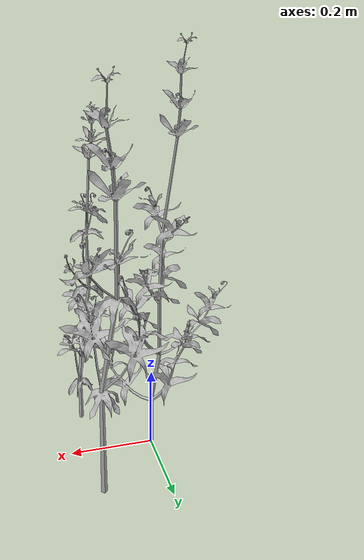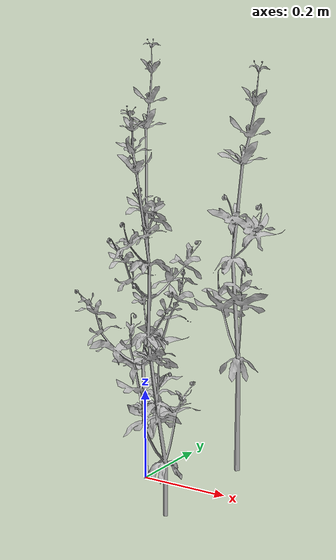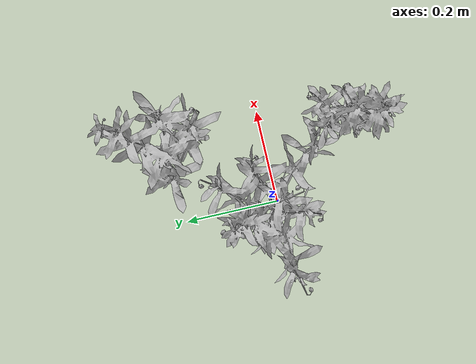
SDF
<?xml version="1.0" ?>
<sdf version="1.6">
  <model name="weed4">
    <static>1</static>
    <link name="weed4_1">

      <visual name="branch">
        <geometry>
          <mesh>
            <uri>model://weed4/meshes/GC09_1.obj</uri>
          </mesh>
        </geometry>

        <cast_shadows>1</cast_shadows>
      </visual>
    </link>
    <link name="weed4_2">

      <visual name="weed4_2">
        <geometry>
          <mesh>
            <uri>model://weed4/meshes/GC09_2.obj</uri>
          </mesh>
        </geometry>
        <cast_shadows>1</cast_shadows>
      </visual>
        <pose>0.15 -0.15 0 0 0 0</pose>
    </link>
    <link name="weed4_3">

      <visual name="weed4_3">
        <geometry>
          <mesh>
            <uri>model://weed4/meshes/GC09_3.obj</uri>
          </mesh>
        </geometry>
        <cast_shadows>1</cast_shadows>
      </visual>
        <pose>0.15 0.15 0 0 0 0</pose>
    </link>
  </model>
</sdf>
